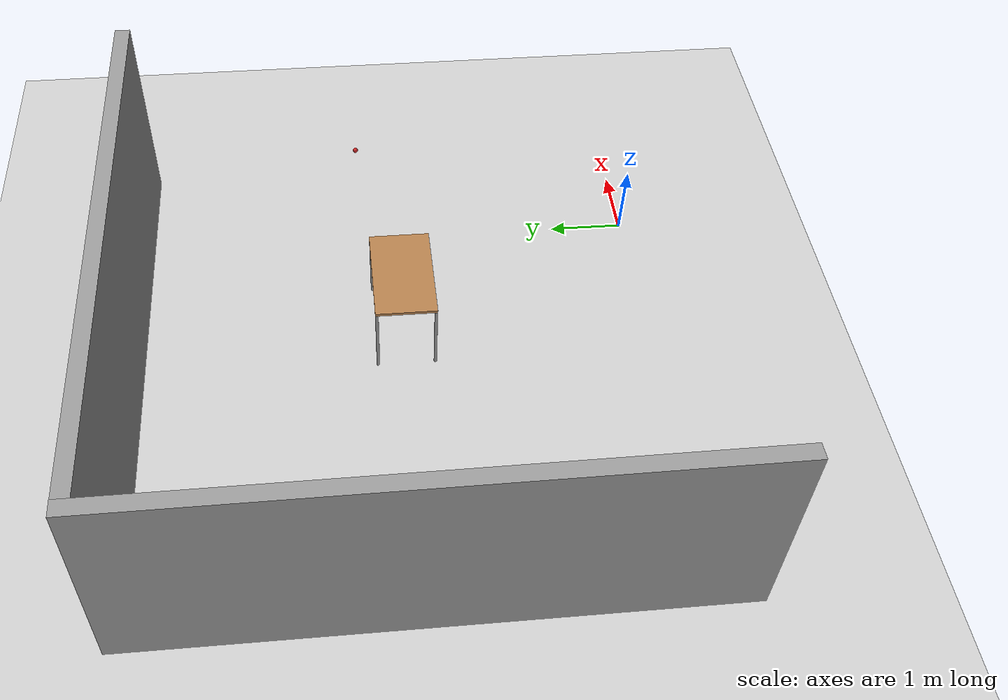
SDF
<sdf version="1.6">
 <world name="default">
  <model name="table_clone">
   <static>0</static>
   <link name="link">
    <collision name="surface">
     <pose>0 0 1 0 -0 0</pose>
     <geometry><box><size>1.5 0.8 0.03</size></box></geometry>
     <surface><friction><ode><mu>0.6</mu><mu2>0.6</mu2></ode></friction></surface>
    </collision>
    <visual name="visual1">
     <pose>0 0 1 0 -0 0</pose>
     <geometry><box><size>1.4 0.8 0.04</size></box></geometry>
     <material>
      <script><uri>file://media/materials/scripts/gazebo.material</uri><name>Gazebo/Wood</name></script>
     </material>
    </visual>
    <collision name="front_left_leg">
     <pose>0.68 0.38 0.5 0 -0 0</pose>
     <geometry><cylinder><radius>0.02</radius><length>1</length></cylinder></geometry>
    </collision>
    <visual name="front_left_leg">
     <pose>0.68 0.38 0.5 0 -0 0</pose>
     <geometry><cylinder><radius>0.02</radius><length>1</length></cylinder></geometry>
     <material>
      <script><uri>file://media/materials/scripts/gazebo.material</uri><name>Gazebo/Grey</name></script>
     </material>
    </visual>
    <collision name="front_right_leg">
     <pose>0.68 -0.38 0.5 0 -0 0</pose>
     <geometry><cylinder><radius>0.02</radius><length>1</length></cylinder></geometry>
    </collision>
    <visual name="front_right_leg">
     <pose>0.68 -0.38 0.5 0 -0 0</pose>
     <geometry><cylinder><radius>0.02</radius><length>1</length></cylinder></geometry>
     <material>
      <script><uri>file://media/materials/scripts/gazebo.material</uri><name>Gazebo/Grey</name></script>
     </material>
    </visual>
    <collision name="back_right_leg">
     <pose>-0.68 -0.38 0.5 0 -0 0</pose>
     <geometry><cylinder><radius>0.02</radius><length>1</length></cylinder></geometry>
    </collision>
    <visual name="back_right_leg">
     <pose>-0.68 -0.38 0.5 0 -0 0</pose>
     <geometry><cylinder><radius>0.02</radius><length>1</length></cylinder></geometry>
     <material>
      <script><uri>file://media/materials/scripts/gazebo.material</uri><name>Gazebo/Grey</name></script>
     </material>
    </visual>
    <collision name="back_left_leg">
     <pose>-0.68 0.38 0.5 0 -0 0</pose>
     <geometry><cylinder><radius>0.02</radius><length>1</length></cylinder></geometry>
    </collision>
    <visual name="back_left_leg">
     <pose>-0.68 0.38 0.5 0 -0 0</pose>
     <geometry><cylinder><radius>0.02</radius><length>1</length></cylinder></geometry>
     <material>
      <script><uri>file://media/materials/scripts/gazebo.material</uri><name>Gazebo/Grey</name></script>
     </material>
    </visual>
    <inertial>
     <inertia><ixx>1</ixx><ixy>0</ixy><ixz>0</ixz><iyy>1</iyy><iyz>0</iyz><izz>1</izz></inertia>
     <mass>1</mass>
    </inertial>
   </link>
   <pose>-1.66998 3.30337 -9e-06 0 -0 0.002279</pose>
  </model>
  <model name="ground_plane">
   <static>1</static>
   <link name="link">
    <collision name="collision">
     <geometry><plane><normal>0 0 1</normal><size>100 100</size></plane></geometry>
     <surface><friction><ode><mu>100</mu><mu2>50</mu2></ode></friction></surface>
    </collision>
    <visual name="visual">
     <cast_shadows>0</cast_shadows>
     <geometry><plane><normal>0 0 1</normal><size>100 100</size></plane></geometry>
     <material>
      <script><uri>file://media/materials/scripts/gazebo.material</uri><name>Gazebo/Grey</name></script>
     </material>
    </visual>
   </link>
   <pose>-12.7845 -6.3181 0 0 -0 0</pose>
  </model>
  <model name="grey_wall_0_clone_clone">
   <static>1</static>
   <link name="link">
    <pose>0 0 1.4 0 -0 0</pose>
    <collision name="collision"><geometry><box><size>7.5 0.2 2.8</size></box></geometry></collision>
    <visual name="visual">
     <cast_shadows>0</cast_shadows>
     <geometry><box><size>7.5 0.2 2.8</size></box></geometry>
     <material>
      <script>
       <uri>model://grey_wall/materials/scripts</uri>
       <uri>model://grey_wall/materials/textures</uri>
       <name>vrc/grey_wall</name>
      </script>
     </material>
    </visual>
   </link>
   <pose>-6.11427 3.21969 0 0 0 -1.55992</pose>
  </model>
  <model name="grey_wall_0_clone_clone_clone_clone_clone">
   <static>1</static>
   <link name="link">
    <pose>0 0 1.4 0 -0 0</pose>
    <collision name="collision"><geometry><box><size>7.5 0.2 2.8</size></box></geometry></collision>
    <visual name="visual">
     <cast_shadows>0</cast_shadows>
     <geometry><box><size>7.5 0.2 2.8</size></box></geometry>
     <material>
      <script>
       <uri>model://grey_wall/materials/scripts</uri>
       <uri>model://grey_wall/materials/textures</uri>
       <name>vrc/grey_wall</name>
      </script>
     </material>
    </visual>
   </link>
   <pose>-2.30551 6.86791 0 0 -0 3.14145</pose>
  </model>
  <model name="cricket_ball">
   <link name="link">
    <pose>0 0 0.0375 0 -0 0</pose>
    <inertial>
     <mass>0.1467</mass>
     <inertia>
      <ixx>8.25187e-05</ixx>
      <ixy>0</ixy>
      <ixz>0</ixz>
      <iyy>8.25187e-05</iyy>
      <iyz>0</iyz>
      <izz>8.25187e-05</izz>
     </inertia>
    </inertial>
    <collision name="collision">
     <geometry><sphere><radius>0.0375</radius></sphere></geometry>
     <surface>
      <contact>
       <poissons_ratio>0.347</poissons_ratio>
       <elastic_modulus>8.8e+09</elastic_modulus>
       <ode><kp>100000</kp><kd>100</kd><max_vel>100</max_vel><min_depth>0.001</min_depth></ode>
      </contact>
      <friction>
       <torsional>
        <coefficient>1</coefficient>
        <use_patch_radius>0</use_patch_radius>
        <surface_radius>0.01</surface_radius>
       </torsional>
      </friction>
     </surface>
    </collision>
    <visual name="visual">
     <geometry><sphere><radius>0.0375</radius></sphere></geometry>
     <material>
      <script><uri>file://media/materials/scripts/gazebo.material</uri><name>Gazebo/Red</name></script>
     </material>
    </visual>
    <velocity_decay><linear>0</linear><angular>0.005</angular></velocity_decay>
   </link>
   <pose>1.94439 3.78603 -0.001014 0 -0 0</pose>
  </model>
 </world>
</sdf>
